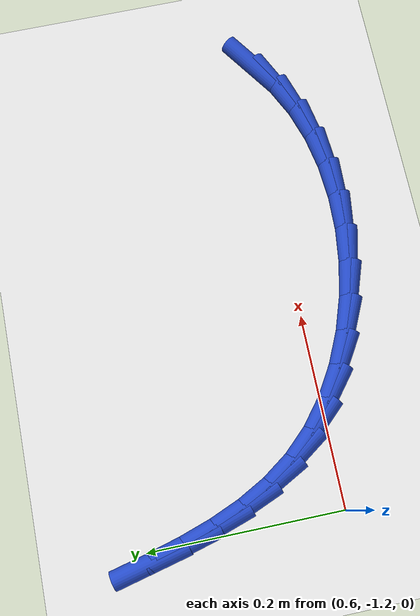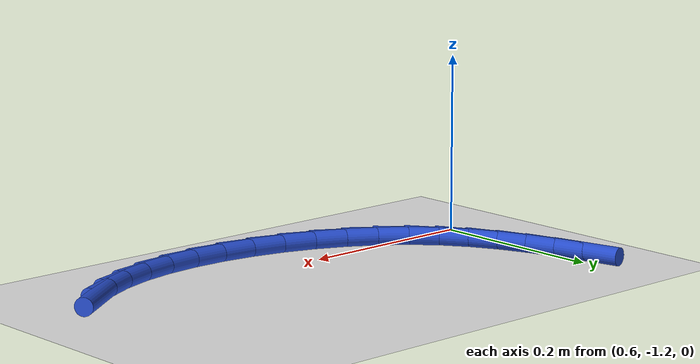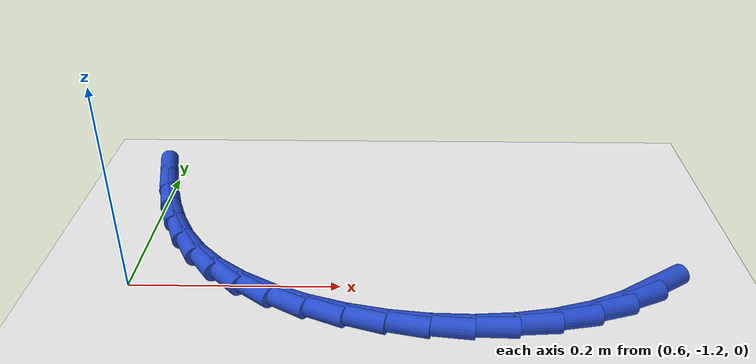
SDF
<sdf version="1.6">
 <world name="default">
  <model name="ground_plane">
   <static>1</static>
   <link name="link">
    <collision name="collision">
     <geometry><plane><normal>0 0 1</normal><size>100 100</size></plane></geometry>
     <surface><friction><ode><mu>100</mu><mu2>50</mu2></ode></friction></surface>
    </collision>
    <visual name="visual">
     <cast_shadows>0</cast_shadows>
     <geometry><plane><normal>0 0 1</normal><size>100 100</size></plane></geometry>
     <material>
      <script><uri>file://media/materials/scripts/gazebo.material</uri><name>Gazebo/WhiteGlow</name></script>
     </material>
    </visual>
   </link>
  </model>
  <model name="line">
   <link name="link_165">
    <pose>1.087254051559579 -1.2109315124561717 0.01 0 1.57 0.602897897783167</pose>
    <collision name="collision">
     <geometry><cylinder><radius>0.01</radius><length>0.08</length></cylinder></geometry>
    </collision>
    <visual name="visual">
     <material>
      <script><name>Gazebo/Blue</name><uri>file://media/materials/scripts/gazebo.material</uri></script>
     </material>
     <geometry><cylinder><radius>0.01</radius><length>0.08</length></cylinder></geometry>
    </visual>
   </link>
   <link name="link_166">
    <pose>1.058712499745499 -1.230579502750634 0.01 0 1.57 0.4486811975136798</pose>
    <collision name="collision">
     <geometry><cylinder><radius>0.01</radius><length>0.08</length></cylinder></geometry>
    </collision>
    <visual name="visual">
     <material>
      <script><name>Gazebo/Blue</name><uri>file://media/materials/scripts/gazebo.material</uri></script>
     </material>
     <geometry><cylinder><radius>0.01</radius><length>0.08</length></cylinder></geometry>
    </visual>
   </link>
   <link name="link_167">
    <pose>1.0270443227686896 -1.2458254994311992 0.01 0 1.57 0.31090857235443475</pose>
    <collision name="collision">
     <geometry><cylinder><radius>0.01</radius><length>0.08</length></cylinder></geometry>
    </collision>
    <visual name="visual">
     <material>
      <script><name>Gazebo/Blue</name><uri>file://media/materials/scripts/gazebo.material</uri></script>
     </material>
     <geometry><cylinder><radius>0.01</radius><length>0.08</length></cylinder></geometry>
    </visual>
   </link>
   <link name="link_168">
    <pose>0.9928977054642205 -1.256797818232601 0.01 0 1.57 0.18752990338495434</pose>
    <collision name="collision">
     <geometry><cylinder><radius>0.01</radius><length>0.08</length></cylinder></geometry>
    </collision>
    <visual name="visual">
     <material>
      <script><name>Gazebo/Blue</name><uri>file://media/materials/scripts/gazebo.material</uri></script>
     </material>
     <geometry><cylinder><radius>0.01</radius><length>0.08</length></cylinder></geometry>
    </visual>
   </link>
   <link name="link_169">
    <pose>0.9569208326671591 -1.2636247748895724 0.01 0 1.57 0.07547503845214319</pose>
    <collision name="collision">
     <geometry><cylinder><radius>0.01</radius><length>0.08</length></cylinder></geometry>
    </collision>
    <visual name="visual">
     <material>
      <script><name>Gazebo/Blue</name><uri>file://media/materials/scripts/gazebo.material</uri></script>
     </material>
     <geometry><cylinder><radius>0.01</radius><length>0.08</length></cylinder></geometry>
    </visual>
   </link>
   <link name="link_170">
    <pose>0.919761889212577 -1.2664346851368464 0.01 0 1.57 -0.02861355884805589</pose>
    <collision name="collision">
     <geometry><cylinder><radius>0.01</radius><length>0.08</length></cylinder></geometry>
    </collision>
    <visual name="visual">
     <material>
      <script><name>Gazebo/Blue</name><uri>file://media/materials/scripts/gazebo.material</uri></script>
     </material>
     <geometry><cylinder><radius>0.01</radius><length>0.08</length></cylinder></geometry>
    </visual>
   </link>
   <link name="link_171">
    <pose>0.8820690599355421 -1.265355864709156 0.01 0 1.57 -0.12807174848822225</pose>
    <collision name="collision">
     <geometry><cylinder><radius>0.01</radius><length>0.08</length></cylinder></geometry>
    </collision>
    <visual name="visual">
     <material>
      <script><name>Gazebo/Blue</name><uri>file://media/materials/scripts/gazebo.material</uri></script>
     </material>
     <geometry><cylinder><radius>0.01</radius><length>0.08</length></cylinder></geometry>
    </visual>
   </link>
   <link name="link_172">
    <pose>0.8444905296711239 -1.2605166293412353 0.01 0 1.57 -0.2261623889984782</pose>
    <collision name="collision">
     <geometry><cylinder><radius>0.01</radius><length>0.08</length></cylinder></geometry>
    </collision>
    <visual name="visual">
     <material>
      <script><name>Gazebo/Blue</name><uri>file://media/materials/scripts/gazebo.material</uri></script>
     </material>
     <geometry><cylinder><radius>0.01</radius><length>0.08</length></cylinder></geometry>
    </visual>
   </link>
   <link name="link_173">
    <pose>0.8076744832543904 -1.2520452947678167 0.01 0 1.57 -0.3261499751523021</pose>
    <collision name="collision">
     <geometry><cylinder><radius>0.01</radius><length>0.08</length></cylinder></geometry>
    </collision>
    <visual name="visual">
     <material>
      <script><name>Gazebo/Blue</name><uri>file://media/materials/scripts/gazebo.material</uri></script>
     </material>
     <geometry><cylinder><radius>0.01</radius><length>0.08</length></cylinder></geometry>
    </visual>
   </link>
   <link name="link_174">
    <pose>0.7722691055204131 -1.2400701767236337 0.01 0 1.57 -0.4314155348587436</pose>
    <collision name="collision">
     <geometry><cylinder><radius>0.01</radius><length>0.08</length></cylinder></geometry>
    </collision>
    <visual name="visual">
     <material>
      <script><name>Gazebo/Blue</name><uri>file://media/materials/scripts/gazebo.material</uri></script>
     </material>
     <geometry><cylinder><radius>0.01</radius><length>0.08</length></cylinder></geometry>
    </visual>
   </link>
   <link name="link_175">
    <pose>0.7389225813042595 -1.2247195909434194 0.01 0 1.57 -0.5455404087906733</pose>
    <collision name="collision">
     <geometry><cylinder><radius>0.01</radius><length>0.08</length></cylinder></geometry>
    </collision>
    <visual name="visual">
     <material>
      <script><name>Gazebo/Blue</name><uri>file://media/materials/scripts/gazebo.material</uri></script>
     </material>
     <geometry><cylinder><radius>0.01</radius><length>0.08</length></cylinder></geometry>
    </visual>
   </link>
   <link name="link_176">
    <pose>0.7082830954409994 -1.2061218531619073 0.01 0 1.57 -0.6722590341410383</pose>
    <collision name="collision">
     <geometry><cylinder><radius>0.01</radius><length>0.08</length></cylinder></geometry>
    </collision>
    <visual name="visual">
     <material>
      <script><name>Gazebo/Blue</name><uri>file://media/materials/scripts/gazebo.material</uri></script>
     </material>
     <geometry><cylinder><radius>0.01</radius><length>0.08</length></cylinder></geometry>
    </visual>
   </link>
   <link name="link_177">
    <pose>0.6809988327657017 -1.1844052791138306 0.01 0 1.57 -0.8147843733252479</pose>
    <collision name="collision">
     <geometry><cylinder><radius>0.01</radius><length>0.08</length></cylinder></geometry>
    </collision>
    <visual name="visual">
     <material>
      <script><name>Gazebo/Blue</name><uri>file://media/materials/scripts/gazebo.material</uri></script>
     </material>
     <geometry><cylinder><radius>0.01</radius><length>0.08</length></cylinder></geometry>
    </visual>
   </link>
   <link name="link_178">
    <pose>0.6577057225971065 -1.1597013105757907 0.01 0 1.57 -0.9603676007854891</pose>
    <collision name="collision">
     <geometry><cylinder><radius>0.01</radius><length>0.08</length></cylinder></geometry>
    </collision>
    <visual name="visual">
     <material>
      <script><name>Gazebo/Blue</name><uri>file://media/materials/scripts/gazebo.material</uri></script>
     </material>
     <geometry><cylinder><radius>0.01</radius><length>0.08</length></cylinder></geometry>
    </visual>
   </link>
   <link name="link_179">
    <pose>0.6385189087814556 -1.132274227235734 0.01 0 1.57 -1.0854297962813004</pose>
    <collision name="collision">
     <geometry><cylinder><radius>0.01</radius><length>0.08</length></cylinder></geometry>
    </collision>
    <visual name="visual">
     <material>
      <script><name>Gazebo/Blue</name><uri>file://media/materials/scripts/gazebo.material</uri></script>
     </material>
     <geometry><cylinder><radius>0.01</radius><length>0.08</length></cylinder></geometry>
    </visual>
   </link>
   <link name="link_180">
    <pose>0.6228501774714996 -1.1025677157963263 0.01 0 1.57 -1.185463951367477</pose>
    <collision name="collision">
     <geometry><cylinder><radius>0.01</radius><length>0.08</length></cylinder></geometry>
    </collision>
    <visual name="visual">
     <material>
      <script><name>Gazebo/Blue</name><uri>file://media/materials/scripts/gazebo.material</uri></script>
     </material>
     <geometry><cylinder><radius>0.01</radius><length>0.08</length></cylinder></geometry>
    </visual>
   </link>
   <link name="link_181">
    <pose>0.6100615079199843 -1.071038167317242 0.01 0 1.57 -1.2605462165224413</pose>
    <collision name="collision">
     <geometry><cylinder><radius>0.01</radius><length>0.08</length></cylinder></geometry>
    </collision>
    <visual name="visual">
     <material>
      <script><name>Gazebo/Blue</name><uri>file://media/materials/scripts/gazebo.material</uri></script>
     </material>
     <geometry><cylinder><radius>0.01</radius><length>0.08</length></cylinder></geometry>
    </visual>
   </link>
   <link name="link_182">
    <pose>0.5995148793796551 -1.0381419728581551 0.01 0 1.57 -1.3121956621232538</pose>
    <collision name="collision">
     <geometry><cylinder><radius>0.01</radius><length>0.08</length></cylinder></geometry>
    </collision>
    <visual name="visual">
     <material>
      <script><name>Gazebo/Blue</name><uri>file://media/materials/scripts/gazebo.material</uri></script>
     </material>
     <geometry><cylinder><radius>0.01</radius><length>0.08</length></cylinder></geometry>
    </visual>
   </link>
   <link name="link_183">
    <pose>0.5905722711032579 -1.0043355234787412 0.01 0 1.57 -1.3420478816802388</pose>
    <collision name="collision">
     <geometry><cylinder><radius>0.01</radius><length>0.08</length></cylinder></geometry>
    </collision>
    <visual name="visual">
     <material>
      <script><name>Gazebo/Blue</name><uri>file://media/materials/scripts/gazebo.material</uri></script>
     </material>
     <geometry><cylinder><radius>0.01</radius><length>0.08</length></cylinder></geometry>
    </visual>
   </link>
  </model>
 </world>
</sdf>
